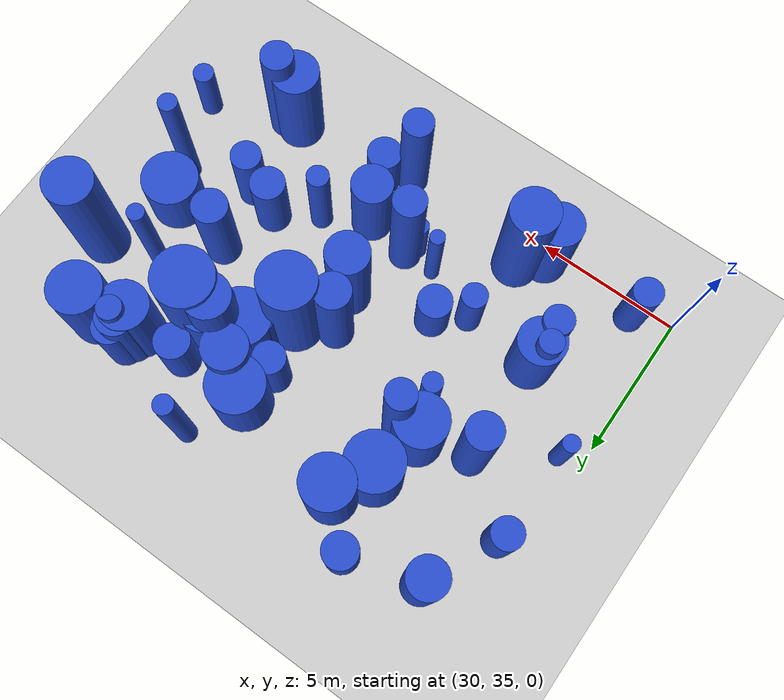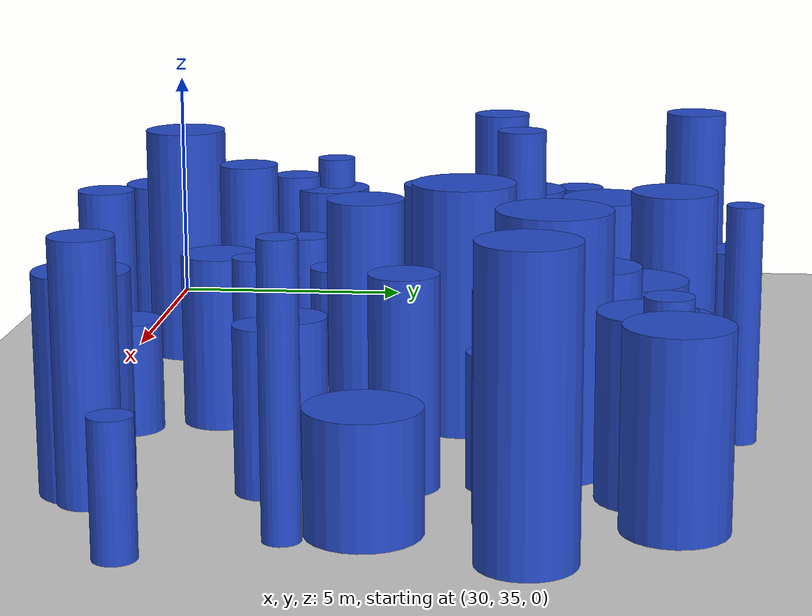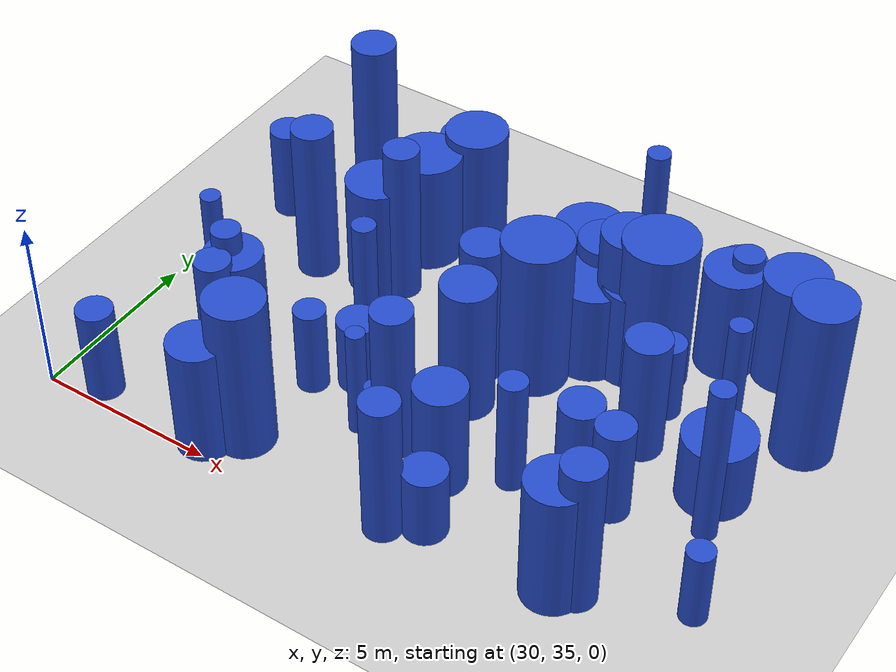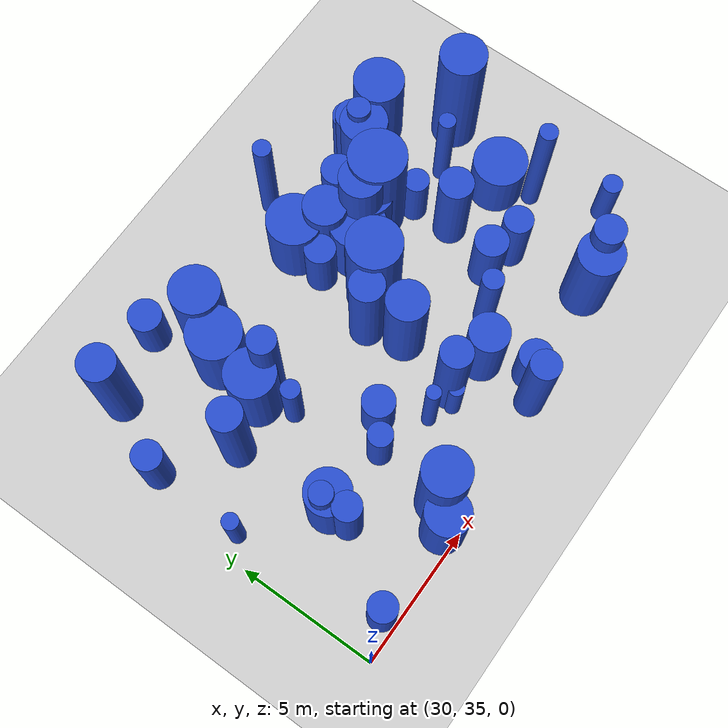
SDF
<sdf version="1.6">
 <world name="default">
  <model name="ground_plane">
   <static>1</static>
   <link name="link">
    <collision name="collision">
     <geometry><plane><normal>0 0 1</normal><size>100 100</size></plane></geometry>
     <surface><friction><ode><mu>100</mu><mu2>50</mu2></ode></friction></surface>
    </collision>
    <visual name="visual">
     <cast_shadows>0</cast_shadows>
     <geometry><plane><normal>0 0 1</normal><size>100 100</size></plane></geometry>
     <material>
      <script><uri>file://media/materials/scripts/gazebo.material</uri><name>Gazebo/Grey</name></script>
     </material>
    </visual>
   </link>
  </model>
  <model name="0">
   <static>0</static>
   <link name="link">
    <inertial>
     <mass>2</mass>
     <inertia><ixx>3.55486</ixx><ixy>0</ixy><ixz>0</ixz><iyy>3.55486</iyy><iyz>0</iyz><izz>0.297884</izz></inertia>
    </inertial>
    <collision name="collision">
     <geometry><cylinder><length>4.52056</length><radius>0.545787</radius></cylinder></geometry>
     <surface><contact><collide_without_contact>1</collide_without_contact></contact></surface>
    </collision>
    <visual name="visual">
     <geometry><cylinder><length>4.52056</length><radius>0.545787</radius></cylinder></geometry>
     <material>
      <script><uri>file://media/materials/scripts/gazebo.material</uri><name>Gazebo/Blue</name></script>
     </material>
    </visual>
    <gravity>0</gravity>
   </link>
   <pose>38.7282 38.0226 2.26028 0 -0 0</pose>
  </model>
  <model name="3">
   <static>0</static>
   <link name="link">
    <inertial>
     <mass>2</mass>
     <inertia><ixx>1.79748</ixx><ixy>0</ixy><ixz>0</ixz><iyy>1.79748</iyy><iyz>0</iyz><izz>0.403289</izz></inertia>
    </inertial>
    <collision name="collision">
     <geometry><cylinder><length>3.09435</length><radius>0.635051</radius></cylinder></geometry>
     <surface><contact><collide_without_contact>1</collide_without_contact></contact></surface>
    </collision>
    <visual name="visual">
     <geometry><cylinder><length>3.09435</length><radius>0.635051</radius></cylinder></geometry>
     <material>
      <script><uri>file://media/materials/scripts/gazebo.material</uri><name>Gazebo/Blue</name></script>
     </material>
    </visual>
    <gravity>0</gravity>
   </link>
   <pose>44.145 45.8026 1.54718 0 -0 0</pose>
  </model>
  <model name="11">
   <static>0</static>
   <link name="link">
    <inertial>
     <mass>2</mass>
     <inertia><ixx>1.48597</ixx><ixy>0</ixy><ixz>0</ixz><iyy>1.48597</iyy><iyz>0</iyz><izz>0.264549</izz></inertia>
    </inertial>
    <collision name="collision">
     <geometry><cylinder><length>2.84994</length><radius>0.514344</radius></cylinder></geometry>
     <surface><contact><collide_without_contact>1</collide_without_contact></contact></surface>
    </collision>
    <visual name="visual">
     <geometry><cylinder><length>2.84994</length><radius>0.514344</radius></cylinder></geometry>
     <material>
      <script><uri>file://media/materials/scripts/gazebo.material</uri><name>Gazebo/Blue</name></script>
     </material>
    </visual>
    <gravity>0</gravity>
   </link>
   <pose>44.2752 39.1553 1.42497 0 -0 0</pose>
  </model>
  <model name="15">
   <static>0</static>
   <link name="link">
    <inertial>
     <mass>2</mass>
     <inertia><ixx>1.70661</ixx><ixy>0</ixy><ixz>0</ixz><iyy>1.70661</iyy><iyz>0</iyz><izz>0.956436</izz></inertia>
    </inertial>
    <collision name="collision">
     <geometry><cylinder><length>2.71484</length><radius>0.977976</radius></cylinder></geometry>
     <surface><contact><collide_without_contact>1</collide_without_contact></contact></surface>
    </collision>
    <visual name="visual">
     <geometry><cylinder><length>2.71484</length><radius>0.977976</radius></cylinder></geometry>
     <material>
      <script><uri>file://media/materials/scripts/gazebo.material</uri><name>Gazebo/Blue</name></script>
     </material>
    </visual>
    <gravity>0</gravity>
   </link>
   <pose>41.1423 43.5016 1.35742 0 -0 0</pose>
  </model>
  <model name="18">
   <static>0</static>
   <link name="link">
    <inertial>
     <mass>2</mass>
     <inertia><ixx>2.27941</ixx><ixy>0</ixy><ixz>0</ixz><iyy>2.27941</iyy><iyz>0</iyz><izz>0.900366</izz></inertia>
    </inertial>
    <collision name="collision">
     <geometry><cylinder><length>3.31291</length><radius>0.948876</radius></cylinder></geometry>
     <surface><contact><collide_without_contact>1</collide_without_contact></contact></surface>
    </collision>
    <visual name="visual">
     <geometry><cylinder><length>3.31291</length><radius>0.948876</radius></cylinder></geometry>
     <material>
      <script><uri>file://media/materials/scripts/gazebo.material</uri><name>Gazebo/Blue</name></script>
     </material>
    </visual>
    <gravity>0</gravity>
   </link>
   <pose>35.1638 44.8172 1.65646 0 -0 0</pose>
  </model>
  <model name="25">
   <static>0</static>
   <link name="link">
    <inertial>
     <mass>2</mass>
     <inertia><ixx>2.06566</ixx><ixy>0</ixy><ixz>0</ixz><iyy>2.06566</iyy><iyz>0</iyz><izz>0.169636</izz></inertia>
    </inertial>
    <collision name="collision">
     <geometry><cylinder><length>3.44747</length><radius>0.411869</radius></cylinder></geometry>
     <surface><contact><collide_without_contact>1</collide_without_contact></contact></surface>
    </collision>
    <visual name="visual">
     <geometry><cylinder><length>3.44747</length><radius>0.411869</radius></cylinder></geometry>
     <material>
      <script><uri>file://media/materials/scripts/gazebo.material</uri><name>Gazebo/Blue</name></script>
     </material>
    </visual>
    <gravity>0</gravity>
   </link>
   <pose>44.3259 45.7116 1.72374 0 -0 0</pose>
  </model>
  <model name="36">
   <static>0</static>
   <link name="link">
    <inertial>
     <mass>2</mass>
     <inertia><ixx>1.15813</ixx><ixy>0</ixy><ixz>0</ixz><iyy>1.15813</iyy><iyz>0</iyz><izz>0.18494</izz></inertia>
    </inertial>
    <collision name="collision">
     <geometry><cylinder><length>2.52863</length><radius>0.430047</radius></cylinder></geometry>
     <surface><contact><collide_without_contact>1</collide_without_contact></contact></surface>
    </collision>
    <visual name="visual">
     <geometry><cylinder><length>2.52863</length><radius>0.430047</radius></cylinder></geometry>
     <material>
      <script><uri>file://media/materials/scripts/gazebo.material</uri><name>Gazebo/Blue</name></script>
     </material>
    </visual>
    <gravity>0</gravity>
   </link>
   <pose>35.7021 38.6987 1.26432 0 -0 0</pose>
  </model>
  <model name="44">
   <static>0</static>
   <link name="link">
    <inertial>
     <mass>2</mass>
     <inertia><ixx>1.18069</ixx><ixy>0</ixy><ixz>0</ixz><iyy>1.18069</iyy><iyz>0</iyz><izz>0.295683</izz></inertia>
    </inertial>
    <collision name="collision">
     <geometry><cylinder><length>2.48939</length><radius>0.543768</radius></cylinder></geometry>
     <surface><contact><collide_without_contact>1</collide_without_contact></contact></surface>
    </collision>
    <visual name="visual">
     <geometry><cylinder><length>2.48939</length><radius>0.543768</radius></cylinder></geometry>
     <material>
      <script><uri>file://media/materials/scripts/gazebo.material</uri><name>Gazebo/Blue</name></script>
     </material>
    </visual>
    <gravity>0</gravity>
   </link>
   <pose>39.706 43.9992 1.2447 0 -0 0</pose>
  </model>
  <model name="49">
   <static>0</static>
   <link name="link">
    <inertial>
     <mass>2</mass>
     <inertia><ixx>3.82017</ixx><ixy>0</ixy><ixz>0</ixz><iyy>3.82017</iyy><iyz>0</iyz><izz>0.891197</izz></inertia>
    </inertial>
    <collision name="collision">
     <geometry><cylinder><length>4.49972</length><radius>0.944032</radius></cylinder></geometry>
     <surface><contact><collide_without_contact>1</collide_without_contact></contact></surface>
    </collision>
    <visual name="visual">
     <geometry><cylinder><length>4.49972</length><radius>0.944032</radius></cylinder></geometry>
     <material>
      <script><uri>file://media/materials/scripts/gazebo.material</uri><name>Gazebo/Blue</name></script>
     </material>
    </visual>
    <gravity>0</gravity>
   </link>
   <pose>40.2277 42.1705 2.24986 0 -0 0</pose>
  </model>
  <model name="50">
   <static>0</static>
   <link name="link">
    <inertial>
     <mass>2</mass>
     <inertia><ixx>4.39079</ixx><ixy>0</ixy><ixz>0</ixz><iyy>4.39079</iyy><iyz>0</iyz><izz>0.652635</izz></inertia>
    </inertial>
    <collision name="collision">
     <geometry><cylinder><length>4.9383</length><radius>0.807858</radius></cylinder></geometry>
     <surface><contact><collide_without_contact>1</collide_without_contact></contact></surface>
    </collision>
    <visual name="visual">
     <geometry><cylinder><length>4.9383</length><radius>0.807858</radius></cylinder></geometry>
     <material>
      <script><uri>file://media/materials/scripts/gazebo.material</uri><name>Gazebo/Blue</name></script>
     </material>
    </visual>
    <gravity>0</gravity>
   </link>
   <pose>47.2454 43.5549 2.46915 0 -0 0</pose>
  </model>
  <model name="71">
   <static>0</static>
   <link name="link">
    <inertial>
     <mass>2</mass>
     <inertia><ixx>1.26288</ixx><ixy>0</ixy><ixz>0</ixz><iyy>1.26288</iyy><iyz>0</iyz><izz>0.333359</izz></inertia>
    </inertial>
    <collision name="collision">
     <geometry><cylinder><length>2.5646</length><radius>0.577373</radius></cylinder></geometry>
     <surface><contact><collide_without_contact>1</collide_without_contact></contact></surface>
    </collision>
    <visual name="visual">
     <geometry><cylinder><length>2.5646</length><radius>0.577373</radius></cylinder></geometry>
     <material>
      <script><uri>file://media/materials/scripts/gazebo.material</uri><name>Gazebo/Blue</name></script>
     </material>
    </visual>
    <gravity>0</gravity>
   </link>
   <pose>44.2708 46.0973 1.2823 0 -0 0</pose>
  </model>
  <model name="73">
   <static>0</static>
   <link name="link">
    <inertial>
     <mass>2</mass>
     <inertia><ixx>2.00036</ixx><ixy>0</ixy><ixz>0</ixz><iyy>2.00036</iyy><iyz>0</iyz><izz>0.690071</izz></inertia>
    </inertial>
    <collision name="collision">
     <geometry><cylinder><length>3.1515</length><radius>0.830705</radius></cylinder></geometry>
     <surface><contact><collide_without_contact>1</collide_without_contact></contact></surface>
    </collision>
    <visual name="visual">
     <geometry><cylinder><length>3.1515</length><radius>0.830705</radius></cylinder></geometry>
     <material>
      <script><uri>file://media/materials/scripts/gazebo.material</uri><name>Gazebo/Blue</name></script>
     </material>
    </visual>
    <gravity>0</gravity>
   </link>
   <pose>44.1486 45.3804 1.57575 0 -0 0</pose>
  </model>
  <model name="75">
   <static>0</static>
   <link name="link">
    <inertial>
     <mass>2</mass>
     <inertia><ixx>1.82506</ixx><ixy>0</ixy><ixz>0</ixz><iyy>1.82506</iyy><iyz>0</iyz><izz>0.862483</izz></inertia>
    </inertial>
    <collision name="collision">
     <geometry><cylinder><length>2.89187</length><radius>0.928699</radius></cylinder></geometry>
     <surface><contact><collide_without_contact>1</collide_without_contact></contact></surface>
    </collision>
    <visual name="visual">
     <geometry><cylinder><length>2.89187</length><radius>0.928699</radius></cylinder></geometry>
     <material>
      <script><uri>file://media/materials/scripts/gazebo.material</uri><name>Gazebo/Blue</name></script>
     </material>
    </visual>
    <gravity>0</gravity>
   </link>
   <pose>42.203 43.8436 1.44593 0 -0 0</pose>
  </model>
  <model name="91">
   <static>0</static>
   <link name="link">
    <inertial>
     <mass>2</mass>
     <inertia><ixx>1.36713</ixx><ixy>0</ixy><ixz>0</ixz><iyy>1.36713</iyy><iyz>0</iyz><izz>0.24454</izz></inertia>
    </inertial>
    <collision name="collision">
     <geometry><cylinder><length>2.73298</length><radius>0.49451</radius></cylinder></geometry>
     <surface><contact><collide_without_contact>1</collide_without_contact></contact></surface>
    </collision>
    <visual name="visual">
     <geometry><cylinder><length>2.73298</length><radius>0.49451</radius></cylinder></geometry>
     <material>
      <script><uri>file://media/materials/scripts/gazebo.material</uri><name>Gazebo/Blue</name></script>
     </material>
    </visual>
    <gravity>0</gravity>
   </link>
   <pose>31.3781 35.5506 1.36649 0 -0 0</pose>
  </model>
  <model name="93">
   <static>0</static>
   <link name="link">
    <inertial>
     <mass>2</mass>
     <inertia>
      <ixx>1.77363</ixx>
      <ixy>0</ixy>
      <ixz>0</ixz>
      <iyy>1.77363</iyy>
      <iyz>0</iyz>
      <izz>0.0645447</izz>
     </inertia>
    </inertial>
    <collision name="collision">
     <geometry><cylinder><length>3.23236</length><radius>0.254056</radius></cylinder></geometry>
     <surface><contact><collide_without_contact>1</collide_without_contact></contact></surface>
    </collision>
    <visual name="visual">
     <geometry><cylinder><length>3.23236</length><radius>0.254056</radius></cylinder></geometry>
     <material>
      <script><uri>file://media/materials/scripts/gazebo.material</uri><name>Gazebo/Blue</name></script>
     </material>
    </visual>
    <gravity>0</gravity>
   </link>
   <pose>37.6218 38.031 1.61618 0 -0 0</pose>
  </model>
  <model name="94">
   <static>0</static>
   <link name="link">
    <inertial>
     <mass>2</mass>
     <inertia><ixx>1.43984</ixx><ixy>0</ixy><ixz>0</ixz><iyy>1.43984</iyy><iyz>0</iyz><izz>0.112897</izz></inertia>
    </inertial>
    <collision name="collision">
     <geometry><cylinder><length>2.88103</length><radius>0.336001</radius></cylinder></geometry>
     <surface><contact><collide_without_contact>1</collide_without_contact></contact></surface>
    </collision>
    <visual name="visual">
     <geometry><cylinder><length>2.88103</length><radius>0.336001</radius></cylinder></geometry>
     <material>
      <script><uri>file://media/materials/scripts/gazebo.material</uri><name>Gazebo/Blue</name></script>
     </material>
    </visual>
    <gravity>0</gravity>
   </link>
   <pose>35.1663 41.8146 1.44052 0 -0 0</pose>
  </model>
  <model name="95">
   <static>0</static>
   <link name="link">
    <inertial>
     <mass>2</mass>
     <inertia>
      <ixx>0.940801</ixx>
      <ixy>0</ixy>
      <ixz>0</ixz>
      <iyy>0.940801</iyy>
      <iyz>0</iyz>
      <izz>0.344368</izz>
     </inertia>
    </inertial>
    <collision name="collision">
     <geometry><cylinder><length>2.14749</length><radius>0.586829</radius></cylinder></geometry>
     <surface><contact><collide_without_contact>1</collide_without_contact></contact></surface>
    </collision>
    <visual name="visual">
     <geometry><cylinder><length>2.14749</length><radius>0.586829</radius></cylinder></geometry>
     <material>
      <script><uri>file://media/materials/scripts/gazebo.material</uri><name>Gazebo/Blue</name></script>
     </material>
    </visual>
    <gravity>0</gravity>
   </link>
   <pose>34.5638 47.3775 1.07374 0 -0 0</pose>
  </model>
  <model name="118">
   <static>0</static>
   <link name="link">
    <inertial>
     <mass>2</mass>
     <inertia><ixx>1.89909</ixx><ixy>0</ixy><ixz>0</ixz><iyy>1.89909</iyy><iyz>0</iyz><izz>0.622758</izz></inertia>
    </inertial>
    <collision name="collision">
     <geometry><cylinder><length>3.08646</length><radius>0.78915</radius></cylinder></geometry>
     <surface><contact><collide_without_contact>1</collide_without_contact></contact></surface>
    </collision>
    <visual name="visual">
     <geometry><cylinder><length>3.08646</length><radius>0.78915</radius></cylinder></geometry>
     <material>
      <script><uri>file://media/materials/scripts/gazebo.material</uri><name>Gazebo/Blue</name></script>
     </material>
    </visual>
    <gravity>0</gravity>
   </link>
   <pose>33.1794 38.8872 1.54323 0 -0 0</pose>
  </model>
  <model name="133">
   <static>0</static>
   <link name="link">
    <inertial>
     <mass>2</mass>
     <inertia><ixx>2.01033</ixx><ixy>0</ixy><ixz>0</ixz><iyy>2.01033</iyy><iyz>0</iyz><izz>0.140787</izz></inertia>
    </inertial>
    <collision name="collision">
     <geometry><cylinder><length>3.41169</length><radius>0.375216</radius></cylinder></geometry>
     <surface><contact><collide_without_contact>1</collide_without_contact></contact></surface>
    </collision>
    <visual name="visual">
     <geometry><cylinder><length>3.41169</length><radius>0.375216</radius></cylinder></geometry>
     <material>
      <script><uri>file://media/materials/scripts/gazebo.material</uri><name>Gazebo/Blue</name></script>
     </material>
    </visual>
    <gravity>0</gravity>
   </link>
   <pose>41.7939 38.5926 1.70585 0 -0 0</pose>
  </model>
  <model name="145">
   <static>0</static>
   <link name="link">
    <inertial>
     <mass>2</mass>
     <inertia><ixx>2.22651</ixx><ixy>0</ixy><ixz>0</ixz><iyy>2.22651</iyy><iyz>0</iyz><izz>0.788437</izz></inertia>
    </inertial>
    <collision name="collision">
     <geometry><cylinder><length>3.31569</length><radius>0.88794</radius></cylinder></geometry>
     <surface><contact><collide_without_contact>1</collide_without_contact></contact></surface>
    </collision>
    <visual name="visual">
     <geometry><cylinder><length>3.31569</length><radius>0.88794</radius></cylinder></geometry>
     <material>
      <script><uri>file://media/materials/scripts/gazebo.material</uri><name>Gazebo/Blue</name></script>
     </material>
    </visual>
    <gravity>0</gravity>
   </link>
   <pose>45.6499 45.8225 1.65784 0 -0 0</pose>
  </model>
  <model name="170">
   <static>0</static>
   <link name="link">
    <inertial>
     <mass>2</mass>
     <inertia>
      <ixx>0.902578</ixx>
      <ixy>0</ixy>
      <ixz>0</ixz>
      <iyy>0.902578</iyy>
      <iyz>0</iyz>
      <izz>0.329341</izz>
     </inertia>
    </inertial>
    <collision name="collision">
     <geometry><cylinder><length>2.10415</length><radius>0.573883</radius></cylinder></geometry>
     <surface><contact><collide_without_contact>1</collide_without_contact></contact></surface>
    </collision>
    <visual name="visual">
     <geometry><cylinder><length>2.10415</length><radius>0.573883</radius></cylinder></geometry>
     <material>
      <script><uri>file://media/materials/scripts/gazebo.material</uri><name>Gazebo/Blue</name></script>
     </material>
    </visual>
    <gravity>0</gravity>
   </link>
   <pose>36.6556 39.4396 1.05207 0 -0 0</pose>
  </model>
  <model name="178">
   <static>0</static>
   <link name="link">
    <inertial>
     <mass>2</mass>
     <inertia>
      <ixx>2.40858</ixx>
      <ixy>0</ixy>
      <ixz>0</ixz>
      <iyy>2.40858</iyy>
      <iyz>0</iyz>
      <izz>0.0861653</izz>
     </inertia>
    </inertial>
    <collision name="collision">
     <geometry><cylinder><length>3.76736</length><radius>0.293539</radius></cylinder></geometry>
     <surface><contact><collide_without_contact>1</collide_without_contact></contact></surface>
    </collision>
    <visual name="visual">
     <geometry><cylinder><length>3.76736</length><radius>0.293539</radius></cylinder></geometry>
     <material>
      <script><uri>file://media/materials/scripts/gazebo.material</uri><name>Gazebo/Blue</name></script>
     </material>
    </visual>
    <gravity>0</gravity>
   </link>
   <pose>45.4931 42.9194 1.88368 0 -0 0</pose>
  </model>
  <model name="191">
   <static>0</static>
   <link name="link">
    <inertial>
     <mass>2</mass>
     <inertia><ixx>2.5267</ixx><ixy>0</ixy><ixz>0</ixz><iyy>2.5267</iyy><iyz>0</iyz><izz>0.749953</izz></inertia>
    </inertial>
    <collision name="collision">
     <geometry><cylinder><length>3.5931</length><radius>0.865998</radius></cylinder></geometry>
     <surface><contact><collide_without_contact>1</collide_without_contact></contact></surface>
    </collision>
    <visual name="visual">
     <geometry><cylinder><length>3.5931</length><radius>0.865998</radius></cylinder></geometry>
     <material>
      <script><uri>file://media/materials/scripts/gazebo.material</uri><name>Gazebo/Blue</name></script>
     </material>
    </visual>
    <gravity>0</gravity>
   </link>
   <pose>35.8904 46.112 1.79655 0 -0 0</pose>
  </model>
  <model name="199">
   <static>0</static>
   <link name="link">
    <inertial>
     <mass>2</mass>
     <inertia><ixx>2.64796</ixx><ixy>0</ixy><ixz>0</ixz><iyy>2.64796</iyy><iyz>0</iyz><izz>0.64376</izz></inertia>
    </inertial>
    <collision name="collision">
     <geometry><cylinder><length>3.73584</length><radius>0.802346</radius></cylinder></geometry>
     <surface><contact><collide_without_contact>1</collide_without_contact></contact></surface>
    </collision>
    <visual name="visual">
     <geometry><cylinder><length>3.73584</length><radius>0.802346</radius></cylinder></geometry>
     <material>
      <script><uri>file://media/materials/scripts/gazebo.material</uri><name>Gazebo/Blue</name></script>
     </material>
    </visual>
    <gravity>0</gravity>
   </link>
   <pose>44.4383 36.2114 1.86792 0 -0 0</pose>
  </model>
  <model name="203">
   <static>0</static>
   <link name="link">
    <inertial>
     <mass>2</mass>
     <inertia><ixx>3.10876</ixx><ixy>0</ixy><ixz>0</ixz><iyy>3.10876</iyy><iyz>0</iyz><izz>0.104013</izz></inertia>
    </inertial>
    <collision name="collision">
     <geometry><cylinder><length>4.28259</length><radius>0.322511</radius></cylinder></geometry>
     <surface><contact><collide_without_contact>1</collide_without_contact></contact></surface>
    </collision>
    <visual name="visual">
     <geometry><cylinder><length>4.28259</length><radius>0.322511</radius></cylinder></geometry>
     <material>
      <script><uri>file://media/materials/scripts/gazebo.material</uri><name>Gazebo/Blue</name></script>
     </material>
    </visual>
    <gravity>0</gravity>
   </link>
   <pose>40.8826 47.131 2.14129 0 -0 0</pose>
  </model>
  <model name="213">
   <static>0</static>
   <link name="link">
    <inertial>
     <mass>2</mass>
     <inertia><ixx>3.45654</ixx><ixy>0</ixy><ixz>0</ixz><iyy>3.45654</iyy><iyz>0</iyz><izz>0.582944</izz></inertia>
    </inertial>
    <collision name="collision">
     <geometry><cylinder><length>4.3578</length><radius>0.763508</radius></cylinder></geometry>
     <surface><contact><collide_without_contact>1</collide_without_contact></contact></surface>
    </collision>
    <visual name="visual">
     <geometry><cylinder><length>4.3578</length><radius>0.763508</radius></cylinder></geometry>
     <material>
      <script><uri>file://media/materials/scripts/gazebo.material</uri><name>Gazebo/Blue</name></script>
     </material>
    </visual>
    <gravity>0</gravity>
   </link>
   <pose>41.8911 43.8704 2.1789 0 -0 0</pose>
  </model>
  <model name="219">
   <static>0</static>
   <link name="link">
    <inertial>
     <mass>2</mass>
     <inertia><ixx>3.40785</ixx><ixy>0</ixy><ixz>0</ixz><iyy>3.40785</iyy><iyz>0</iyz><izz>0.292131</izz></inertia>
    </inertial>
    <collision name="collision">
     <geometry><cylinder><length>4.42388</length><radius>0.540492</radius></cylinder></geometry>
     <surface><contact><collide_without_contact>1</collide_without_contact></contact></surface>
    </collision>
    <visual name="visual">
     <geometry><cylinder><length>4.42388</length><radius>0.540492</radius></cylinder></geometry>
     <material>
      <script><uri>file://media/materials/scripts/gazebo.material</uri><name>Gazebo/Blue</name></script>
     </material>
    </visual>
    <gravity>0</gravity>
   </link>
   <pose>44.9723 36.3747 2.21194 0 -0 0</pose>
  </model>
  <model name="230">
   <static>0</static>
   <link name="link">
    <inertial>
     <mass>2</mass>
     <inertia><ixx>2.95672</ixx><ixy>0</ixy><ixz>0</ixz><iyy>2.95672</iyy><iyz>0</iyz><izz>0.521312</izz></inertia>
    </inertial>
    <collision name="collision">
     <geometry><cylinder><length>4.02199</length><radius>0.722019</radius></cylinder></geometry>
     <surface><contact><collide_without_contact>1</collide_without_contact></contact></surface>
    </collision>
    <visual name="visual">
     <geometry><cylinder><length>4.02199</length><radius>0.722019</radius></cylinder></geometry>
     <material>
      <script><uri>file://media/materials/scripts/gazebo.material</uri><name>Gazebo/Blue</name></script>
     </material>
    </visual>
    <gravity>0</gravity>
   </link>
   <pose>39.3979 40.2975 2.01099 0 -0 0</pose>
  </model>
  <model name="238">
   <static>0</static>
   <link name="link">
    <inertial>
     <mass>2</mass>
     <inertia><ixx>3.85377</ixx><ixy>0</ixy><ixz>0</ixz><iyy>3.85377</iyy><iyz>0</iyz><izz>0.329647</izz></inertia>
    </inertial>
    <collision name="collision">
     <geometry><cylinder><length>4.70465</length><radius>0.574149</radius></cylinder></geometry>
     <surface><contact><collide_without_contact>1</collide_without_contact></contact></surface>
    </collision>
    <visual name="visual">
     <geometry><cylinder><length>4.70465</length><radius>0.574149</radius></cylinder></geometry>
     <material>
      <script><uri>file://media/materials/scripts/gazebo.material</uri><name>Gazebo/Blue</name></script>
     </material>
    </visual>
    <gravity>0</gravity>
   </link>
   <pose>33.0431 42.5367 2.35232 0 -0 0</pose>
  </model>
  <model name="247">
   <static>0</static>
   <link name="link">
    <inertial>
     <mass>2</mass>
     <inertia><ixx>2.30352</ixx><ixy>0</ixy><ixz>0</ixz><iyy>2.30352</iyy><iyz>0</iyz><izz>0.759355</izz></inertia>
    </inertial>
    <collision name="collision">
     <geometry><cylinder><length>3.3975</length><radius>0.87141</radius></cylinder></geometry>
     <surface><contact><collide_without_contact>1</collide_without_contact></contact></surface>
    </collision>
    <visual name="visual">
     <geometry><cylinder><length>3.3975</length><radius>0.87141</radius></cylinder></geometry>
     <material>
      <script><uri>file://media/materials/scripts/gazebo.material</uri><name>Gazebo/Blue</name></script>
     </material>
    </visual>
    <gravity>0</gravity>
   </link>
   <pose>34.7477 43.0469 1.69875 0 -0 0</pose>
  </model>
  <model name="262">
   <static>0</static>
   <link name="link">
    <inertial>
     <mass>2</mass>
     <inertia>
      <ixx>0.750308</ixx>
      <ixy>0</ixy>
      <ixz>0</ixz>
      <iyy>0.750308</iyy>
      <iyz>0</iyz>
      <izz>0.0839869</izz>
     </inertia>
    </inertial>
    <collision name="collision">
     <geometry><cylinder><length>2.06153</length><radius>0.289805</radius></cylinder></geometry>
     <surface><contact><collide_without_contact>1</collide_without_contact></contact></surface>
    </collision>
    <visual name="visual">
     <geometry><cylinder><length>2.06153</length><radius>0.289805</radius></cylinder></geometry>
     <material>
      <script><uri>file://media/materials/scripts/gazebo.material</uri><name>Gazebo/Blue</name></script>
     </material>
    </visual>
    <gravity>0</gravity>
   </link>
   <pose>43.378 43.3026 1.03076 0 -0 0</pose>
  </model>
  <model name="266">
   <static>0</static>
   <link name="link">
    <inertial>
     <mass>2</mass>
     <inertia><ixx>2.35</ixx><ixy>0</ixy><ixz>0</ixz><iyy>2.35</iyy><iyz>0</iyz><izz>0.161342</izz></inertia>
    </inertial>
    <collision name="collision">
     <geometry><cylinder><length>3.68998</length><radius>0.401674</radius></cylinder></geometry>
     <surface><contact><collide_without_contact>1</collide_without_contact></contact></surface>
    </collision>
    <visual name="visual">
     <geometry><cylinder><length>3.68998</length><radius>0.401674</radius></cylinder></geometry>
     <material>
      <script><uri>file://media/materials/scripts/gazebo.material</uri><name>Gazebo/Blue</name></script>
     </material>
    </visual>
    <gravity>0</gravity>
   </link>
   <pose>32.9378 38.9484 1.84499 0 -0 0</pose>
  </model>
  <model name="270">
   <static>0</static>
   <link name="link">
    <inertial>
     <mass>2</mass>
     <inertia><ixx>3.86801</ixx><ixy>0</ixy><ixz>0</ixz><iyy>3.86801</iyy><iyz>0</iyz><izz>0.100642</izz></inertia>
    </inertial>
    <collision name="collision">
     <geometry><cylinder><length>4.78603</length><radius>0.317241</radius></cylinder></geometry>
     <surface><contact><collide_without_contact>1</collide_without_contact></contact></surface>
    </collision>
    <visual name="visual">
     <geometry><cylinder><length>4.78603</length><radius>0.317241</radius></cylinder></geometry>
     <material>
      <script><uri>file://media/materials/scripts/gazebo.material</uri><name>Gazebo/Blue</name></script>
     </material>
    </visual>
    <gravity>0</gravity>
   </link>
   <pose>46.5462 39.7626 2.39302 0 -0 0</pose>
  </model>
  <model name="283">
   <static>0</static>
   <link name="link">
    <inertial>
     <mass>2</mass>
     <inertia><ixx>2.38263</ixx><ixy>0</ixy><ixz>0</ixz><iyy>2.38263</iyy><iyz>0</iyz><izz>0.355141</izz></inertia>
    </inertial>
    <collision name="collision">
     <geometry><cylinder><length>3.63735</length><radius>0.595937</radius></cylinder></geometry>
     <surface><contact><collide_without_contact>1</collide_without_contact></contact></surface>
    </collision>
    <visual name="visual">
     <geometry><cylinder><length>3.63735</length><radius>0.595937</radius></cylinder></geometry>
     <material>
      <script><uri>file://media/materials/scripts/gazebo.material</uri><name>Gazebo/Blue</name></script>
     </material>
    </visual>
    <gravity>0</gravity>
   </link>
   <pose>43.8375 41.414 1.81868 0 -0 0</pose>
  </model>
  <model name="285">
   <static>0</static>
   <link name="link">
    <inertial>
     <mass>2</mass>
     <inertia><ixx>1.3879</ixx><ixy>0</ixy><ixz>0</ixz><iyy>1.3879</iyy><iyz>0</iyz><izz>0.270528</izz></inertia>
    </inertial>
    <collision name="collision">
     <geometry><cylinder><length>2.7415</length><radius>0.520123</radius></cylinder></geometry>
     <surface><contact><collide_without_contact>1</collide_without_contact></contact></surface>
    </collision>
    <visual name="visual">
     <geometry><cylinder><length>2.7415</length><radius>0.520123</radius></cylinder></geometry>
     <material>
      <script><uri>file://media/materials/scripts/gazebo.material</uri><name>Gazebo/Blue</name></script>
     </material>
    </visual>
    <gravity>0</gravity>
   </link>
   <pose>30.8825 44.2002 1.37075 0 -0 0</pose>
  </model>
  <model name="295">
   <static>0</static>
   <link name="link">
    <inertial>
     <mass>2</mass>
     <inertia><ixx>1.40702</ixx><ixy>0</ixy><ixz>0</ixz><iyy>1.40702</iyy><iyz>0</iyz><izz>0.430739</izz></inertia>
    </inertial>
    <collision name="collision">
     <geometry><cylinder><length>2.67393</length><radius>0.656307</radius></cylinder></geometry>
     <surface><contact><collide_without_contact>1</collide_without_contact></contact></surface>
    </collision>
    <visual name="visual">
     <geometry><cylinder><length>2.67393</length><radius>0.656307</radius></cylinder></geometry>
     <material>
      <script><uri>file://media/materials/scripts/gazebo.material</uri><name>Gazebo/Blue</name></script>
     </material>
    </visual>
    <gravity>0</gravity>
   </link>
   <pose>40.8292 43.2645 1.33696 0 -0 0</pose>
  </model>
  <model name="297">
   <static>0</static>
   <link name="link">
    <inertial>
     <mass>2</mass>
     <inertia><ixx>1.04304</ixx><ixy>0</ixy><ixz>0</ixz><iyy>1.04304</iyy><iyz>0</iyz><izz>0.357104</izz></inertia>
    </inertial>
    <collision name="collision">
     <geometry><cylinder><length>2.27748</length><radius>0.597582</radius></cylinder></geometry>
     <surface><contact><collide_without_contact>1</collide_without_contact></contact></surface>
    </collision>
    <visual name="visual">
     <geometry><cylinder><length>2.27748</length><radius>0.597582</radius></cylinder></geometry>
     <material>
      <script><uri>file://media/materials/scripts/gazebo.material</uri><name>Gazebo/Blue</name></script>
     </material>
    </visual>
    <gravity>0</gravity>
   </link>
   <pose>42.5134 45.2972 1.13874 0 -0 0</pose>
  </model>
  <model name="300">
   <static>0</static>
   <link name="link">
    <inertial>
     <mass>2</mass>
     <inertia><ixx>3.77175</ixx><ixy>0</ixy><ixz>0</ixz><iyy>3.77175</iyy><iyz>0</iyz><izz>0.40467</izz></inertia>
    </inertial>
    <collision name="collision">
     <geometry><cylinder><length>4.6278</length><radius>0.636137</radius></cylinder></geometry>
     <surface><contact><collide_without_contact>1</collide_without_contact></contact></surface>
    </collision>
    <visual name="visual">
     <geometry><cylinder><length>4.6278</length><radius>0.636137</radius></cylinder></geometry>
     <material>
      <script><uri>file://media/materials/scripts/gazebo.material</uri><name>Gazebo/Blue</name></script>
     </material>
    </visual>
    <gravity>0</gravity>
   </link>
   <pose>32.0729 46.7036 2.3139 0 -0 0</pose>
  </model>
  <model name="324">
   <static>0</static>
   <link name="link">
    <inertial>
     <mass>2</mass>
     <inertia>
      <ixx>0.905673</ixx>
      <ixy>0</ixy>
      <ixz>0</ixz>
      <iyy>0.905673</iyy>
      <iyz>0</iyz>
      <izz>0.127247</izz>
     </inertia>
    </inertial>
    <collision name="collision">
     <geometry><cylinder><length>2.24773</length><radius>0.356717</radius></cylinder></geometry>
     <surface><contact><collide_without_contact>1</collide_without_contact></contact></surface>
    </collision>
    <visual name="visual">
     <geometry><cylinder><length>2.24773</length><radius>0.356717</radius></cylinder></geometry>
     <material>
      <script><uri>file://media/materials/scripts/gazebo.material</uri><name>Gazebo/Blue</name></script>
     </material>
    </visual>
    <gravity>0</gravity>
   </link>
   <pose>47.5189 37.3774 1.12387 0 -0 0</pose>
  </model>
  <model name="328">
   <static>0</static>
   <link name="link">
    <inertial>
     <mass>2</mass>
     <inertia><ixx>3.12982</ixx><ixy>0</ixy><ixz>0</ixz><iyy>3.12982</iyy><iyz>0</iyz><izz>0.26232</izz></inertia>
    </inertial>
    <collision name="collision">
     <geometry><cylinder><length>4.24169</length><radius>0.512172</radius></cylinder></geometry>
     <surface><contact><collide_without_contact>1</collide_without_contact></contact></surface>
    </collision>
    <visual name="visual">
     <geometry><cylinder><length>4.24169</length><radius>0.512172</radius></cylinder></geometry>
     <material>
      <script><uri>file://media/materials/scripts/gazebo.material</uri><name>Gazebo/Blue</name></script>
     </material>
    </visual>
    <gravity>0</gravity>
   </link>
   <pose>40.0703 35.6111 2.12085 0 -0 0</pose>
  </model>
  <model name="333">
   <static>0</static>
   <link name="link">
    <inertial>
     <mass>2</mass>
     <inertia>
      <ixx>0.994056</ixx>
      <ixy>0</ixy>
      <ixz>0</ixz>
      <iyy>0.994056</iyy>
      <iyz>0</iyz>
      <izz>0.195811</izz>
     </inertia>
    </inertial>
    <collision name="collision">
     <geometry><cylinder><length>2.31882</length><radius>0.442505</radius></cylinder></geometry>
     <surface><contact><collide_without_contact>1</collide_without_contact></contact></surface>
    </collision>
    <visual name="visual">
     <geometry><cylinder><length>2.31882</length><radius>0.442505</radius></cylinder></geometry>
     <material>
      <script><uri>file://media/materials/scripts/gazebo.material</uri><name>Gazebo/Blue</name></script>
     </material>
    </visual>
    <gravity>0</gravity>
   </link>
   <pose>43.7241 42.864 1.15941 0 -0 0</pose>
  </model>
  <model name="349">
   <static>0</static>
   <link name="link">
    <inertial>
     <mass>2</mass>
     <inertia>
      <ixx>0.820107</ixx>
      <ixy>0</ixy>
      <ixz>0</ixz>
      <iyy>0.820107</iyy>
      <iyz>0</iyz>
      <izz>0.0760271</izz>
     </inertia>
    </inertial>
    <collision name="collision">
     <geometry><cylinder><length>2.16623</length><radius>0.27573</radius></cylinder></geometry>
     <surface><contact><collide_without_contact>1</collide_without_contact></contact></surface>
    </collision>
    <visual name="visual">
     <geometry><cylinder><length>2.16623</length><radius>0.27573</radius></cylinder></geometry>
     <material>
      <script><uri>file://media/materials/scripts/gazebo.material</uri><name>Gazebo/Blue</name></script>
     </material>
    </visual>
    <gravity>0</gravity>
   </link>
   <pose>38.4463 37.6343 1.08312 0 -0 0</pose>
  </model>
  <model name="356">
   <static>0</static>
   <link name="link">
    <inertial>
     <mass>2</mass>
     <inertia><ixx>3.19049</ixx><ixy>0</ixy><ixz>0</ixz><iyy>3.19049</iyy><iyz>0</iyz><izz>0.366687</izz></inertia>
    </inertial>
    <collision name="collision">
     <geometry><cylinder><length>4.24769</length><radius>0.605547</radius></cylinder></geometry>
     <surface><contact><collide_without_contact>1</collide_without_contact></contact></surface>
    </collision>
    <visual name="visual">
     <geometry><cylinder><length>4.24769</length><radius>0.605547</radius></cylinder></geometry>
     <material>
      <script><uri>file://media/materials/scripts/gazebo.material</uri><name>Gazebo/Blue</name></script>
     </material>
    </visual>
    <gravity>0</gravity>
   </link>
   <pose>39.0135 41.587 2.12385 0 -0 0</pose>
  </model>
  <model name="379">
   <static>0</static>
   <link name="link">
    <inertial>
     <mass>2</mass>
     <inertia><ixx>1.98213</ixx><ixy>0</ixy><ixz>0</ixz><iyy>1.98213</iyy><iyz>0</iyz><izz>0.245871</izz></inertia>
    </inertial>
    <collision name="collision">
     <geometry><cylinder><length>3.33993</length><radius>0.495854</radius></cylinder></geometry>
     <surface><contact><collide_without_contact>1</collide_without_contact></contact></surface>
    </collision>
    <visual name="visual">
     <geometry><cylinder><length>3.33993</length><radius>0.495854</radius></cylinder></geometry>
     <material>
      <script><uri>file://media/materials/scripts/gazebo.material</uri><name>Gazebo/Blue</name></script>
     </material>
    </visual>
    <gravity>0</gravity>
   </link>
   <pose>33.1249 38.1259 1.66997 0 -0 0</pose>
  </model>
  <model name="384">
   <static>0</static>
   <link name="link">
    <inertial>
     <mass>2</mass>
     <inertia><ixx>1.67955</ixx><ixy>0</ixy><ixz>0</ixz><iyy>1.67955</iyy><iyz>0</iyz><izz>0.918766</izz></inertia>
    </inertial>
    <collision name="collision">
     <geometry><cylinder><length>2.70574</length><radius>0.958523</radius></cylinder></geometry>
     <surface><contact><collide_without_contact>1</collide_without_contact></contact></surface>
    </collision>
    <visual name="visual">
     <geometry><cylinder><length>2.70574</length><radius>0.958523</radius></cylinder></geometry>
     <material>
      <script><uri>file://media/materials/scripts/gazebo.material</uri><name>Gazebo/Blue</name></script>
     </material>
    </visual>
    <gravity>0</gravity>
   </link>
   <pose>39.9911 45.2785 1.35287 0 -0 0</pose>
  </model>
  <model name="386">
   <static>0</static>
   <link name="link">
    <inertial>
     <mass>2</mass>
     <inertia>
      <ixx>1.11368</ixx>
      <ixy>0</ixy>
      <ixz>0</ixz>
      <iyy>1.11368</iyy>
      <iyz>0</iyz>
      <izz>0.0821507</izz>
     </inertia>
    </inertial>
    <collision name="collision">
     <geometry><cylinder><length>2.53686</length><radius>0.286619</radius></cylinder></geometry>
     <surface><contact><collide_without_contact>1</collide_without_contact></contact></surface>
    </collision>
    <visual name="visual">
     <geometry><cylinder><length>2.53686</length><radius>0.286619</radius></cylinder></geometry>
     <material>
      <script><uri>file://media/materials/scripts/gazebo.material</uri><name>Gazebo/Blue</name></script>
     </material>
    </visual>
    <gravity>0</gravity>
   </link>
   <pose>30.7774 40.8702 1.26843 0 -0 0</pose>
  </model>
  <model name="388">
   <static>0</static>
   <link name="link">
    <inertial>
     <mass>2</mass>
     <inertia><ixx>3.84588</ixx><ixy>0</ixy><ixz>0</ixz><iyy>3.84588</iyy><iyz>0</iyz><izz>0.238577</izz></inertia>
    </inertial>
    <collision name="collision">
     <geometry><cylinder><length>4.72859</length><radius>0.488443</radius></cylinder></geometry>
     <surface><contact><collide_without_contact>1</collide_without_contact></contact></surface>
    </collision>
    <visual name="visual">
     <geometry><cylinder><length>4.72859</length><radius>0.488443</radius></cylinder></geometry>
     <material>
      <script><uri>file://media/materials/scripts/gazebo.material</uri><name>Gazebo/Blue</name></script>
     </material>
    </visual>
    <gravity>0</gravity>
   </link>
   <pose>35.5295 43.0466 2.36429 0 -0 0</pose>
  </model>
  <model name="401">
   <static>0</static>
   <link name="link">
    <inertial>
     <mass>2</mass>
     <inertia><ixx>1.93667</ixx><ixy>0</ixy><ixz>0</ixz><iyy>1.93667</iyy><iyz>0</iyz><izz>0.575722</izz></inertia>
    </inertial>
    <collision name="collision">
     <geometry><cylinder><length>3.14529</length><radius>0.758764</radius></cylinder></geometry>
     <surface><contact><collide_without_contact>1</collide_without_contact></contact></surface>
    </collision>
    <visual name="visual">
     <geometry><cylinder><length>3.14529</length><radius>0.758764</radius></cylinder></geometry>
     <material>
      <script><uri>file://media/materials/scripts/gazebo.material</uri><name>Gazebo/Blue</name></script>
     </material>
    </visual>
    <gravity>0</gravity>
   </link>
   <pose>40.8462 44.6128 1.57264 0 -0 0</pose>
  </model>
  <model name="422">
   <static>0</static>
   <link name="link">
    <inertial>
     <mass>2</mass>
     <inertia>
      <ixx>0.866079</ixx>
      <ixy>0</ixy>
      <ixz>0</ixz>
      <iyy>0.866079</iyy>
      <iyz>0</iyz>
      <izz>0.342625</izz>
     </inertia>
    </inertial>
    <collision name="collision">
     <geometry><cylinder><length>2.04171</length><radius>0.585342</radius></cylinder></geometry>
     <surface><contact><collide_without_contact>1</collide_without_contact></contact></surface>
    </collision>
    <visual name="visual">
     <geometry><cylinder><length>2.04171</length><radius>0.585342</radius></cylinder></geometry>
     <material>
      <script><uri>file://media/materials/scripts/gazebo.material</uri><name>Gazebo/Blue</name></script>
     </material>
    </visual>
    <gravity>0</gravity>
   </link>
   <pose>40.922 36.1606 1.02086 0 -0 0</pose>
  </model>
  <model name="432">
   <static>0</static>
   <link name="link">
    <inertial>
     <mass>2</mass>
     <inertia><ixx>3.90649</ixx><ixy>0</ixy><ixz>0</ixz><iyy>3.90649</iyy><iyz>0</iyz><izz>0.993442</izz></inertia>
    </inertial>
    <collision name="collision">
     <geometry><cylinder><length>4.52312</length><radius>0.996715</radius></cylinder></geometry>
     <surface><contact><collide_without_contact>1</collide_without_contact></contact></surface>
    </collision>
    <visual name="visual">
     <geometry><cylinder><length>4.52312</length><radius>0.996715</radius></cylinder></geometry>
     <material>
      <script><uri>file://media/materials/scripts/gazebo.material</uri><name>Gazebo/Blue</name></script>
     </material>
    </visual>
    <gravity>0</gravity>
   </link>
   <pose>42.7574 43.8455 2.26156 0 -0 0</pose>
  </model>
  <model name="435">
   <static>0</static>
   <link name="link">
    <inertial>
     <mass>2</mass>
     <inertia><ixx>2.2173</ixx><ixy>0</ixy><ixz>0</ixz><iyy>2.2173</iyy><iyz>0</iyz><izz>0.575399</izz></inertia>
    </inertial>
    <collision name="collision">
     <geometry><cylinder><length>3.40259</length><radius>0.758551</radius></cylinder></geometry>
     <surface><contact><collide_without_contact>1</collide_without_contact></contact></surface>
    </collision>
    <visual name="visual">
     <geometry><cylinder><length>3.40259</length><radius>0.758551</radius></cylinder></geometry>
     <material>
      <script><uri>file://media/materials/scripts/gazebo.material</uri><name>Gazebo/Blue</name></script>
     </material>
    </visual>
    <gravity>0</gravity>
   </link>
   <pose>34.726 35.5174 1.70129 0 -0 0</pose>
  </model>
  <model name="439">
   <static>0</static>
   <link name="link">
    <inertial>
     <mass>2</mass>
     <inertia><ixx>3.94078</ixx><ixy>0</ixy><ixz>0</ixz><iyy>3.94078</iyy><iyz>0</iyz><izz>0.642371</izz></inertia>
    </inertial>
    <collision name="collision">
     <geometry><cylinder><length>4.66021</length><radius>0.80148</radius></cylinder></geometry>
     <surface><contact><collide_without_contact>1</collide_without_contact></contact></surface>
    </collision>
    <visual name="visual">
     <geometry><cylinder><length>4.66021</length><radius>0.80148</radius></cylinder></geometry>
     <material>
      <script><uri>file://media/materials/scripts/gazebo.material</uri><name>Gazebo/Blue</name></script>
     </material>
    </visual>
    <gravity>0</gravity>
   </link>
   <pose>35.4777 36.1735 2.3301 0 -0 0</pose>
  </model>
  <model name="463">
   <static>0</static>
   <link name="link">
    <inertial>
     <mass>2</mass>
     <inertia><ixx>1.89577</ixx><ixy>0</ixy><ixz>0</ixz><iyy>1.89577</iyy><iyz>0</iyz><izz>0.479569</izz></inertia>
    </inertial>
    <collision name="collision">
     <geometry><cylinder><length>3.15212</length><radius>0.692509</radius></cylinder></geometry>
     <surface><contact><collide_without_contact>1</collide_without_contact></contact></surface>
    </collision>
    <visual name="visual">
     <geometry><cylinder><length>3.15212</length><radius>0.692509</radius></cylinder></geometry>
     <material>
      <script><uri>file://media/materials/scripts/gazebo.material</uri><name>Gazebo/Blue</name></script>
     </material>
    </visual>
    <gravity>0</gravity>
   </link>
   <pose>40.3208 37.7132 1.57606 0 -0 0</pose>
  </model>
  <model name="465">
   <static>0</static>
   <link name="link">
    <inertial>
     <mass>2</mass>
     <inertia><ixx>1.15384</ixx><ixy>0</ixy><ixz>0</ixz><iyy>1.15384</iyy><iyz>0</iyz><izz>0.911851</izz></inertia>
    </inertial>
    <collision name="collision">
     <geometry><cylinder><length>2.04633</length><radius>0.954909</radius></cylinder></geometry>
     <surface><contact><collide_without_contact>1</collide_without_contact></contact></surface>
    </collision>
    <visual name="visual">
     <geometry><cylinder><length>2.04633</length><radius>0.954909</radius></cylinder></geometry>
     <material>
      <script><uri>file://media/materials/scripts/gazebo.material</uri><name>Gazebo/Blue</name></script>
     </material>
    </visual>
    <gravity>0</gravity>
   </link>
   <pose>46.1184 40.9861 1.02317 0 -0 0</pose>
  </model>
  <model name="496">
   <static>0</static>
   <link name="link">
    <inertial>
     <mass>2</mass>
     <inertia><ixx>1.40087</ixx><ixy>0</ixy><ixz>0</ixz><iyy>1.40087</iyy><iyz>0</iyz><izz>0.345259</izz></inertia>
    </inertial>
    <collision name="collision">
     <geometry><cylinder><length>2.71467</length><radius>0.587587</radius></cylinder></geometry>
     <surface><contact><collide_without_contact>1</collide_without_contact></contact></surface>
    </collision>
    <visual name="visual">
     <geometry><cylinder><length>2.71467</length><radius>0.587587</radius></cylinder></geometry>
     <material>
      <script><uri>file://media/materials/scripts/gazebo.material</uri><name>Gazebo/Blue</name></script>
     </material>
    </visual>
    <gravity>0</gravity>
   </link>
   <pose>43.1757 39.4805 1.35734 0 -0 0</pose>
  </model>
 </world>
</sdf>
